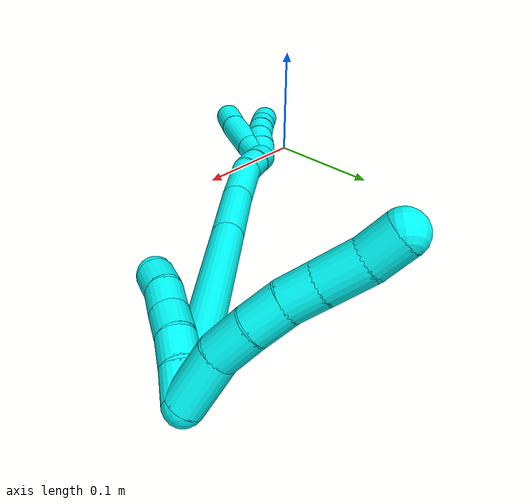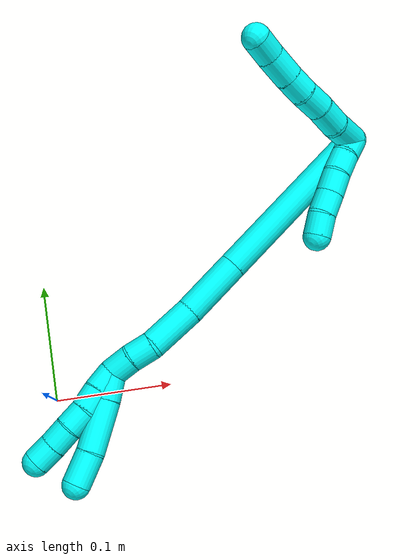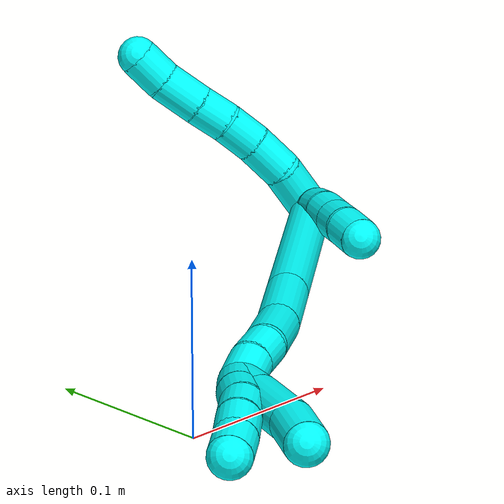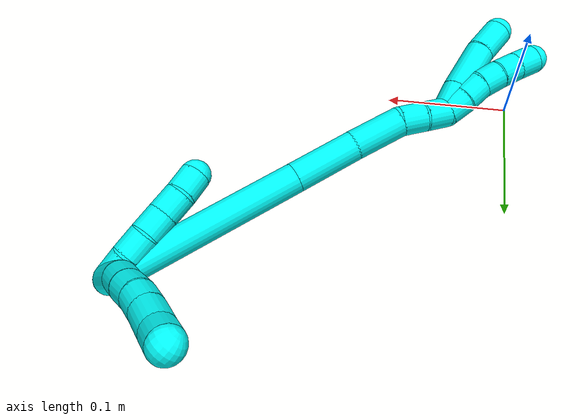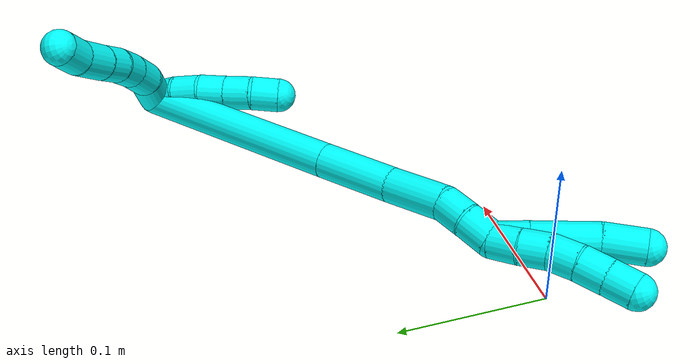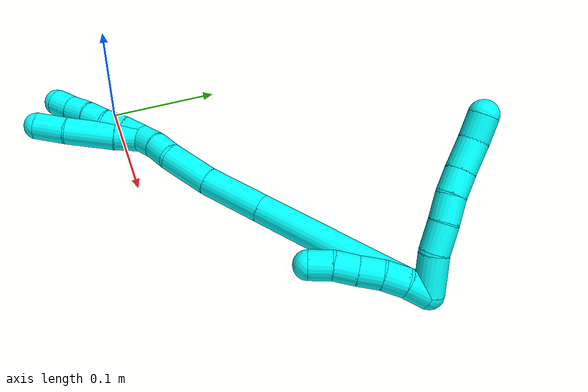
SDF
<sdf version="1.7">
 <world name="default">
  <model name="3">
   <static>0</static>
   <link name="3">
    <collision name="collision-cylinder-e_1_2_8">
     <pose>0.013892 -0.004297 -0.009261 2.70717 0.936992 2.31914</pose>
     <geometry><cylinder><radius>0.0125</radius><length>0.03448</length></cylinder></geometry>
     <surface>
      <friction><ode><mu>1.16</mu><mu2>1.16</mu2><slip1>0</slip1><slip2>0</slip2></ode></friction>
      <contact><ode><kp>1e+06</kp><kd>1</kd><max_vel>0</max_vel><min_depth>0.001</min_depth></ode></contact>
     </surface>
    </collision>
    <visual name="visual-cylinder-e_1_2_8">
     <pose>0.013892 -0.004297 -0.009261 2.70717 0.936992 2.31914</pose>
     <geometry><cylinder><radius>0.0125</radius><length>0.03448</length></cylinder></geometry>
     <material><ambient>0.003922 1 0.996078 1</ambient></material>
    </visual>
    <collision name="collision-cylinder-e_2_8_9">
     <pose>0.038296 -0.013793 -0.022913 2.27213 0.996373 1.72833</pose>
     <geometry><cylinder><radius>0.0125</radius><length>0.025046</length></cylinder></geometry>
     <surface>
      <friction><ode><mu>1.16</mu><mu2>1.16</mu2><slip1>0</slip1><slip2>0</slip2></ode></friction>
      <contact><ode><kp>1e+06</kp><kd>1</kd><max_vel>0</max_vel><min_depth>0.001</min_depth></ode></contact>
     </surface>
    </collision>
    <visual name="visual-cylinder-e_2_8_9">
     <pose>0.038296 -0.013793 -0.022913 2.27213 0.996373 1.72833</pose>
     <geometry><cylinder><radius>0.0125</radius><length>0.025046</length></cylinder></geometry>
     <material><ambient>0.003922 1 0.996078 1</ambient></material>
    </visual>
    <collision name="collision-cylinder-e_3_9_10">
     <pose>0.057461 -0.024548 -0.031321 2.19674 0.900622 1.51534</pose>
     <geometry><cylinder><radius>0.0125</radius><length>0.022077</length></cylinder></geometry>
     <surface>
      <friction><ode><mu>1.16</mu><mu2>1.16</mu2><slip1>0</slip1><slip2>0</slip2></ode></friction>
      <contact><ode><kp>1e+06</kp><kd>1</kd><max_vel>0</max_vel><min_depth>0.001</min_depth></ode></contact>
     </surface>
    </collision>
    <visual name="visual-cylinder-e_3_9_10">
     <pose>0.057461 -0.024548 -0.031321 2.19674 0.900622 1.51534</pose>
     <geometry><cylinder><radius>0.0125</radius><length>0.022077</length></cylinder></geometry>
     <material><ambient>0.003922 1 0.996078 1</ambient></material>
    </visual>
    <collision name="collision-cylinder-e_4_10_11">
     <pose>0.074093 -0.035976 -0.03775 1.96068 0.898869 1.24766</pose>
     <geometry><cylinder><radius>0.0125</radius><length>0.020397</length></cylinder></geometry>
     <surface>
      <friction><ode><mu>1.16</mu><mu2>1.16</mu2><slip1>0</slip1><slip2>0</slip2></ode></friction>
      <contact><ode><kp>1e+06</kp><kd>1</kd><max_vel>0</max_vel><min_depth>0.001</min_depth></ode></contact>
     </surface>
    </collision>
    <visual name="visual-cylinder-e_4_10_11">
     <pose>0.074093 -0.035976 -0.03775 1.96068 0.898869 1.24766</pose>
     <geometry><cylinder><radius>0.0125</radius><length>0.020397</length></cylinder></geometry>
     <material><ambient>0.003922 1 0.996078 1</ambient></material>
    </visual>
    <collision name="collision-cylinder-e_5_11_12">
     <pose>0.0928 -0.049036 -0.042964 1.9423 0.947274 1.2867</pose>
     <geometry><cylinder><radius>0.0125</radius><length>0.026423</length></cylinder></geometry>
     <surface>
      <friction><ode><mu>1.16</mu><mu2>1.16</mu2><slip1>0</slip1><slip2>0</slip2></ode></friction>
      <contact><ode><kp>1e+06</kp><kd>1</kd><max_vel>0</max_vel><min_depth>0.001</min_depth></ode></contact>
     </surface>
    </collision>
    <visual name="visual-cylinder-e_5_11_12">
     <pose>0.0928 -0.049036 -0.042964 1.9423 0.947274 1.2867</pose>
     <geometry><cylinder><radius>0.0125</radius><length>0.026423</length></cylinder></geometry>
     <material><ambient>0.003922 1 0.996078 1</ambient></material>
    </visual>
    <collision name="collision-cylinder-e_6_12_6">
     <pose>0.112863 -0.060592 -0.048947 2.20064 1.0461 1.69605</pose>
     <geometry><cylinder><radius>0.0125</radius><length>0.021577</length></cylinder></geometry>
     <surface>
      <friction><ode><mu>1.16</mu><mu2>1.16</mu2><slip1>0</slip1><slip2>0</slip2></ode></friction>
      <contact><ode><kp>1e+06</kp><kd>1</kd><max_vel>0</max_vel><min_depth>0.001</min_depth></ode></contact>
     </surface>
    </collision>
    <visual name="visual-cylinder-e_6_12_6">
     <pose>0.112863 -0.060592 -0.048947 2.20064 1.0461 1.69605</pose>
     <geometry><cylinder><radius>0.0125</radius><length>0.021577</length></cylinder></geometry>
     <material><ambient>0.003922 1 0.996078 1</ambient></material>
    </visual>
    <collision name="collision-cylinder-e_1_2_13">
     <pose>-0.001248 0.001042 -0.009867 -3.03641 -0.125151 1.74417</pose>
     <geometry><cylinder><radius>0.0125</radius><length>0.02</length></cylinder></geometry>
     <surface>
      <friction><ode><mu>1.16</mu><mu2>1.16</mu2><slip1>0</slip1><slip2>0</slip2></ode></friction>
      <contact><ode><kp>1e+06</kp><kd>1</kd><max_vel>0</max_vel><min_depth>0.001</min_depth></ode></contact>
     </surface>
    </collision>
    <visual name="visual-cylinder-e_1_2_13">
     <pose>-0.001248 0.001042 -0.009867 -3.03641 -0.125151 1.74417</pose>
     <geometry><cylinder><radius>0.0125</radius><length>0.02</length></cylinder></geometry>
     <material><ambient>0.003922 1 0.996078 1</ambient></material>
    </visual>
    <collision name="collision-cylinder-e_2_13_14">
     <pose>-0.005564 0.003057 -0.029202 -3.03912 -0.311756 2.51074</pose>
     <geometry><cylinder><radius>0.0125</radius><length>0.02</length></cylinder></geometry>
     <surface>
      <friction><ode><mu>1.16</mu><mu2>1.16</mu2><slip1>0</slip1><slip2>0</slip2></ode></friction>
      <contact><ode><kp>1e+06</kp><kd>1</kd><max_vel>0</max_vel><min_depth>0.001</min_depth></ode></contact>
     </surface>
    </collision>
    <visual name="visual-cylinder-e_2_13_14">
     <pose>-0.005564 0.003057 -0.029202 -3.03912 -0.311756 2.51074</pose>
     <geometry><cylinder><radius>0.0125</radius><length>0.02</length></cylinder></geometry>
     <material><ambient>0.003922 1 0.996078 1</ambient></material>
    </visual>
    <collision name="collision-cylinder-e_3_14_15">
     <pose>-0.013323 0.00513 -0.047432 -3.01678 -0.488354 2.65012</pose>
     <geometry><cylinder><radius>0.0125</radius><length>0.02</length></cylinder></geometry>
     <surface>
      <friction><ode><mu>1.16</mu><mu2>1.16</mu2><slip1>0</slip1><slip2>0</slip2></ode></friction>
      <contact><ode><kp>1e+06</kp><kd>1</kd><max_vel>0</max_vel><min_depth>0.001</min_depth></ode></contact>
     </surface>
    </collision>
    <visual name="visual-cylinder-e_3_14_15">
     <pose>-0.013323 0.00513 -0.047432 -3.01678 -0.488354 2.65012</pose>
     <geometry><cylinder><radius>0.0125</radius><length>0.02</length></cylinder></geometry>
     <material><ambient>0.003922 1 0.996078 1</ambient></material>
    </visual>
    <collision name="collision-cylinder-e_4_15_16">
     <pose>-0.022259 0.007198 -0.065197 -3.03441 -0.438387 2.66898</pose>
     <geometry><cylinder><radius>0.0125</radius><length>0.02</length></cylinder></geometry>
     <surface>
      <friction><ode><mu>1.16</mu><mu2>1.16</mu2><slip1>0</slip1><slip2>0</slip2></ode></friction>
      <contact><ode><kp>1e+06</kp><kd>1</kd><max_vel>0</max_vel><min_depth>0.001</min_depth></ode></contact>
     </surface>
    </collision>
    <visual name="visual-cylinder-e_4_15_16">
     <pose>-0.022259 0.007198 -0.065197 -3.03441 -0.438387 2.66898</pose>
     <geometry><cylinder><radius>0.0125</radius><length>0.02</length></cylinder></geometry>
     <material><ambient>0.003922 1 0.996078 1</ambient></material>
    </visual>
    <collision name="collision-cylinder-e_5_16_5">
     <pose>-0.032347 0.009929 -0.082121 -2.92267 -0.623999 2.48478</pose>
     <geometry><cylinder><radius>0.0125</radius><length>0.02</length></cylinder></geometry>
     <surface>
      <friction><ode><mu>1.16</mu><mu2>1.16</mu2><slip1>0</slip1><slip2>0</slip2></ode></friction>
      <contact><ode><kp>1e+06</kp><kd>1</kd><max_vel>0</max_vel><min_depth>0.001</min_depth></ode></contact>
     </surface>
    </collision>
    <visual name="visual-cylinder-e_5_16_5">
     <pose>-0.032347 0.009929 -0.082121 -2.92267 -0.623999 2.48478</pose>
     <geometry><cylinder><radius>0.0125</radius><length>0.02</length></cylinder></geometry>
     <material><ambient>0.003922 1 0.996078 1</ambient></material>
    </visual>
    <collision name="collision-cylinder-e_1_2_17">
     <pose>-0.028082 -0.022578 -0.070178 2.83033 -0.363959 -1.72954</pose>
     <geometry><cylinder><radius>0.0125</radius><length>0.157777</length></cylinder></geometry>
     <surface>
      <friction><ode><mu>1.16</mu><mu2>1.16</mu2><slip1>0</slip1><slip2>0</slip2></ode></friction>
      <contact><ode><kp>1e+06</kp><kd>1</kd><max_vel>0</max_vel><min_depth>0.001</min_depth></ode></contact>
     </surface>
    </collision>
    <visual name="visual-cylinder-e_1_2_17">
     <pose>-0.028082 -0.022578 -0.070178 2.83033 -0.363959 -1.72954</pose>
     <geometry><cylinder><radius>0.0125</radius><length>0.157777</length></cylinder></geometry>
     <material><ambient>0.003922 1 0.996078 1</ambient></material>
    </visual>
    <collision name="collision-cylinder-e_2_17_18">
     <pose>-0.065913 -0.053006 -0.165092 2.83426 -0.359321 -1.72934</pose>
     <geometry><cylinder><radius>0.0125</radius><length>0.055444</length></cylinder></geometry>
     <surface>
      <friction><ode><mu>1.16</mu><mu2>1.16</mu2><slip1>0</slip1><slip2>0</slip2></ode></friction>
      <contact><ode><kp>1e+06</kp><kd>1</kd><max_vel>0</max_vel><min_depth>0.001</min_depth></ode></contact>
     </surface>
    </collision>
    <visual name="visual-cylinder-e_2_17_18">
     <pose>-0.065913 -0.053006 -0.165092 2.83426 -0.359321 -1.72934</pose>
     <geometry><cylinder><radius>0.0125</radius><length>0.055444</length></cylinder></geometry>
     <material><ambient>0.003922 1 0.996078 1</ambient></material>
    </visual>
    <collision name="collision-cylinder-e_3_18_19">
     <pose>-0.081378 -0.067702 -0.209899 2.81291 -0.263311 -1.34765</pose>
     <geometry><cylinder><radius>0.0125</radius><length>0.043926</length></cylinder></geometry>
     <surface>
      <friction><ode><mu>1.16</mu><mu2>1.16</mu2><slip1>0</slip1><slip2>0</slip2></ode></friction>
      <contact><ode><kp>1e+06</kp><kd>1</kd><max_vel>0</max_vel><min_depth>0.001</min_depth></ode></contact>
     </surface>
    </collision>
    <visual name="visual-cylinder-e_3_18_19">
     <pose>-0.081378 -0.067702 -0.209899 2.81291 -0.263311 -1.34765</pose>
     <geometry><cylinder><radius>0.0125</radius><length>0.043926</length></cylinder></geometry>
     <material><ambient>0.003922 1 0.996078 1</ambient></material>
    </visual>
    <collision name="collision-cylinder-e_4_19_20">
     <pose>-0.090427 -0.080369 -0.238182 2.52497 -0.319751 -0.937411</pose>
     <geometry><cylinder><radius>0.0125</radius><length>0.021207</length></cylinder></geometry>
     <surface>
      <friction><ode><mu>1.16</mu><mu2>1.16</mu2><slip1>0</slip1><slip2>0</slip2></ode></friction>
      <contact><ode><kp>1e+06</kp><kd>1</kd><max_vel>0</max_vel><min_depth>0.001</min_depth></ode></contact>
     </surface>
    </collision>
    <visual name="visual-cylinder-e_4_19_20">
     <pose>-0.090427 -0.080369 -0.238182 2.52497 -0.319751 -0.937411</pose>
     <geometry><cylinder><radius>0.0125</radius><length>0.021207</length></cylinder></geometry>
     <material><ambient>0.003922 1 0.996078 1</ambient></material>
    </visual>
    <collision name="collision-cylinder-e_5_20_1">
     <pose>-0.098722 -0.091702 -0.254276 2.53126 -0.476298 -1.31316</pose>
     <geometry><cylinder><radius>0.0125</radius><length>0.021646</length></cylinder></geometry>
     <surface>
      <friction><ode><mu>1.16</mu><mu2>1.16</mu2><slip1>0</slip1><slip2>0</slip2></ode></friction>
      <contact><ode><kp>1e+06</kp><kd>1</kd><max_vel>0</max_vel><min_depth>0.001</min_depth></ode></contact>
     </surface>
    </collision>
    <visual name="visual-cylinder-e_5_20_1">
     <pose>-0.098722 -0.091702 -0.254276 2.53126 -0.476298 -1.31316</pose>
     <geometry><cylinder><radius>0.0125</radius><length>0.021646</length></cylinder></geometry>
     <material><ambient>0.003922 1 0.996078 1</ambient></material>
    </visual>
    <collision name="collision-cylinder-e_1_1_21">
     <pose>-0.106811 -0.098943 -0.271498 2.95864 -0.318008 -2.10234</pose>
     <geometry><cylinder><radius>0.0125</radius><length>0.02</length></cylinder></geometry>
     <surface>
      <friction><ode><mu>1.16</mu><mu2>1.16</mu2><slip1>0</slip1><slip2>0</slip2></ode></friction>
      <contact><ode><kp>1e+06</kp><kd>1</kd><max_vel>0</max_vel><min_depth>0.001</min_depth></ode></contact>
     </surface>
    </collision>
    <visual name="visual-cylinder-e_1_1_21">
     <pose>-0.106811 -0.098943 -0.271498 2.95864 -0.318008 -2.10234</pose>
     <geometry><cylinder><radius>0.0125</radius><length>0.02</length></cylinder></geometry>
     <material><ambient>0.003922 1 0.996078 1</ambient></material>
    </visual>
    <collision name="collision-cylinder-e_2_21_22">
     <pose>-0.113639 -0.101455 -0.290095 3.05713 -0.379148 -2.70805</pose>
     <geometry><cylinder><radius>0.0125</radius><length>0.02</length></cylinder></geometry>
     <surface>
      <friction><ode><mu>1.16</mu><mu2>1.16</mu2><slip1>0</slip1><slip2>0</slip2></ode></friction>
      <contact><ode><kp>1e+06</kp><kd>1</kd><max_vel>0</max_vel><min_depth>0.001</min_depth></ode></contact>
     </surface>
    </collision>
    <visual name="visual-cylinder-e_2_21_22">
     <pose>-0.113639 -0.101455 -0.290095 3.05713 -0.379148 -2.70805</pose>
     <geometry><cylinder><radius>0.0125</radius><length>0.02</length></cylinder></geometry>
     <material><ambient>0.003922 1 0.996078 1</ambient></material>
    </visual>
    <collision name="collision-cylinder-e_3_22_23">
     <pose>-0.121196 -0.105044 -0.308141 2.83262 -0.395783 -1.82094</pose>
     <geometry><cylinder><radius>0.0125</radius><length>0.02</length></cylinder></geometry>
     <surface>
      <friction><ode><mu>1.16</mu><mu2>1.16</mu2><slip1>0</slip1><slip2>0</slip2></ode></friction>
      <contact><ode><kp>1e+06</kp><kd>1</kd><max_vel>0</max_vel><min_depth>0.001</min_depth></ode></contact>
     </surface>
    </collision>
    <visual name="visual-cylinder-e_3_22_23">
     <pose>-0.121196 -0.105044 -0.308141 2.83262 -0.395783 -1.82094</pose>
     <geometry><cylinder><radius>0.0125</radius><length>0.02</length></cylinder></geometry>
     <material><ambient>0.003922 1 0.996078 1</ambient></material>
    </visual>
    <collision name="collision-cylinder-e_4_23_24">
     <pose>-0.12989 -0.111005 -0.325094 2.77275 -0.505088 -1.88977</pose>
     <geometry><cylinder><radius>0.0125</radius><length>0.02</length></cylinder></geometry>
     <surface>
      <friction><ode><mu>1.16</mu><mu2>1.16</mu2><slip1>0</slip1><slip2>0</slip2></ode></friction>
      <contact><ode><kp>1e+06</kp><kd>1</kd><max_vel>0</max_vel><min_depth>0.001</min_depth></ode></contact>
     </surface>
    </collision>
    <visual name="visual-cylinder-e_4_23_24">
     <pose>-0.12989 -0.111005 -0.325094 2.77275 -0.505088 -1.88977</pose>
     <geometry><cylinder><radius>0.0125</radius><length>0.02</length></cylinder></geometry>
     <material><ambient>0.003922 1 0.996078 1</ambient></material>
    </visual>
    <collision name="collision-cylinder-e_5_24_4">
     <pose>-0.139042 -0.117687 -0.341561 2.73999 -0.445952 -1.67855</pose>
     <geometry><cylinder><radius>0.0125</radius><length>0.02</length></cylinder></geometry>
     <surface>
      <friction><ode><mu>1.16</mu><mu2>1.16</mu2><slip1>0</slip1><slip2>0</slip2></ode></friction>
      <contact><ode><kp>1e+06</kp><kd>1</kd><max_vel>0</max_vel><min_depth>0.001</min_depth></ode></contact>
     </surface>
    </collision>
    <visual name="visual-cylinder-e_5_24_4">
     <pose>-0.139042 -0.117687 -0.341561 2.73999 -0.445952 -1.67855</pose>
     <geometry><cylinder><radius>0.0125</radius><length>0.02</length></cylinder></geometry>
     <material><ambient>0.003922 1 0.996078 1</ambient></material>
    </visual>
    <collision name="collision-cylinder-e_1_1_25">
     <pose>-0.109859 -0.09426 -0.27224 -2.85652 -0.531325 2.17089</pose>
     <geometry><cylinder><radius>0.0125</radius><length>0.024372</length></cylinder></geometry>
     <surface>
      <friction><ode><mu>1.16</mu><mu2>1.16</mu2><slip1>0</slip1><slip2>0</slip2></ode></friction>
      <contact><ode><kp>1e+06</kp><kd>1</kd><max_vel>0</max_vel><min_depth>0.001</min_depth></ode></contact>
     </surface>
    </collision>
    <visual name="visual-cylinder-e_1_1_25">
     <pose>-0.109859 -0.09426 -0.27224 -2.85652 -0.531325 2.17089</pose>
     <geometry><cylinder><radius>0.0125</radius><length>0.024372</length></cylinder></geometry>
     <material><ambient>0.003922 1 0.996078 1</ambient></material>
    </visual>
    <collision name="collision-cylinder-e_2_25_26">
     <pose>-0.126939 -0.087288 -0.302247 -2.94264 -0.492441 2.38554</pose>
     <geometry><cylinder><radius>0.0125</radius><length>0.046134</length></cylinder></geometry>
     <surface>
      <friction><ode><mu>1.16</mu><mu2>1.16</mu2><slip1>0</slip1><slip2>0</slip2></ode></friction>
      <contact><ode><kp>1e+06</kp><kd>1</kd><max_vel>0</max_vel><min_depth>0.001</min_depth></ode></contact>
     </surface>
    </collision>
    <visual name="visual-cylinder-e_2_25_26">
     <pose>-0.126939 -0.087288 -0.302247 -2.94264 -0.492441 2.38554</pose>
     <geometry><cylinder><radius>0.0125</radius><length>0.046134</length></cylinder></geometry>
     <material><ambient>0.003922 1 0.996078 1</ambient></material>
    </visual>
    <collision name="collision-cylinder-e_3_26_3">
     <pose>-0.145201 -0.082818 -0.334946 -3.10612 -0.522238 3.00903</pose>
     <geometry><cylinder><radius>0.0125</radius><length>0.029494</length></cylinder></geometry>
     <surface>
      <friction><ode><mu>1.16</mu><mu2>1.16</mu2><slip1>0</slip1><slip2>0</slip2></ode></friction>
      <contact><ode><kp>1e+06</kp><kd>1</kd><max_vel>0</max_vel><min_depth>0.001</min_depth></ode></contact>
     </surface>
    </collision>
    <visual name="visual-cylinder-e_3_26_3">
     <pose>-0.145201 -0.082818 -0.334946 -3.10612 -0.522238 3.00903</pose>
     <geometry><cylinder><radius>0.0125</radius><length>0.029494</length></cylinder></geometry>
     <material><ambient>0.003922 1 0.996078 1</ambient></material>
    </visual>
    <collision name="collision-sphere-3">
     <pose>-0.152557 -0.082365 -0.347719 0 -0 0</pose>
     <geometry><sphere><radius>0.0125</radius></sphere></geometry>
     <surface>
      <friction><ode><mu>1.16</mu><mu2>1.16</mu2><slip1>0</slip1><slip2>0</slip2></ode></friction>
      <contact><ode><kp>1e+06</kp><kd>1</kd><max_vel>0</max_vel><min_depth>0.001</min_depth></ode></contact>
     </surface>
    </collision>
    <visual name="visual-sphere-3">
     <pose>-0.152557 -0.082365 -0.347719 0 -0 0</pose>
     <geometry><sphere><radius>0.0125</radius></sphere></geometry>
     <material><ambient>0.003922 1 0.996078 1</ambient></material>
    </visual>
    <collision name="collision-sphere-26">
     <pose>-0.137845 -0.083271 -0.322172 0 -0 0</pose>
     <geometry><sphere><radius>0.0125</radius></sphere></geometry>
     <surface>
      <friction><ode><mu>1.16</mu><mu2>1.16</mu2><slip1>0</slip1><slip2>0</slip2></ode></friction>
      <contact><ode><kp>1e+06</kp><kd>1</kd><max_vel>0</max_vel><min_depth>0.001</min_depth></ode></contact>
     </surface>
    </collision>
    <visual name="visual-sphere-26">
     <pose>-0.137845 -0.083271 -0.322172 0 -0 0</pose>
     <geometry><sphere><radius>0.0125</radius></sphere></geometry>
     <material><ambient>0.003922 1 0.996078 1</ambient></material>
    </visual>
    <collision name="collision-sphere-25">
     <pose>-0.116033 -0.091306 -0.282321 0 -0 0</pose>
     <geometry><sphere><radius>0.0125</radius></sphere></geometry>
     <surface>
      <friction><ode><mu>1.16</mu><mu2>1.16</mu2><slip1>0</slip1><slip2>0</slip2></ode></friction>
      <contact><ode><kp>1e+06</kp><kd>1</kd><max_vel>0</max_vel><min_depth>0.001</min_depth></ode></contact>
     </surface>
    </collision>
    <visual name="visual-sphere-25">
     <pose>-0.116033 -0.091306 -0.282321 0 -0 0</pose>
     <geometry><sphere><radius>0.0125</radius></sphere></geometry>
     <material><ambient>0.003922 1 0.996078 1</ambient></material>
    </visual>
    <collision name="collision-sphere-4">
     <pose>-0.143355 -0.121214 -0.349865 0 -0 0</pose>
     <geometry><sphere><radius>0.0125</radius></sphere></geometry>
     <surface>
      <friction><ode><mu>1.16</mu><mu2>1.16</mu2><slip1>0</slip1><slip2>0</slip2></ode></friction>
      <contact><ode><kp>1e+06</kp><kd>1</kd><max_vel>0</max_vel><min_depth>0.001</min_depth></ode></contact>
     </surface>
    </collision>
    <visual name="visual-sphere-4">
     <pose>-0.143355 -0.121214 -0.349865 0 -0 0</pose>
     <geometry><sphere><radius>0.0125</radius></sphere></geometry>
     <material><ambient>0.003922 1 0.996078 1</ambient></material>
    </visual>
    <collision name="collision-sphere-24">
     <pose>-0.134729 -0.11416 -0.333257 0 -0 0</pose>
     <geometry><sphere><radius>0.0125</radius></sphere></geometry>
     <surface>
      <friction><ode><mu>1.16</mu><mu2>1.16</mu2><slip1>0</slip1><slip2>0</slip2></ode></friction>
      <contact><ode><kp>1e+06</kp><kd>1</kd><max_vel>0</max_vel><min_depth>0.001</min_depth></ode></contact>
     </surface>
    </collision>
    <visual name="visual-sphere-24">
     <pose>-0.134729 -0.11416 -0.333257 0 -0 0</pose>
     <geometry><sphere><radius>0.0125</radius></sphere></geometry>
     <material><ambient>0.003922 1 0.996078 1</ambient></material>
    </visual>
    <collision name="collision-sphere-23">
     <pose>-0.125051 -0.10785 -0.316931 0 -0 0</pose>
     <geometry><sphere><radius>0.0125</radius></sphere></geometry>
     <surface>
      <friction><ode><mu>1.16</mu><mu2>1.16</mu2><slip1>0</slip1><slip2>0</slip2></ode></friction>
      <contact><ode><kp>1e+06</kp><kd>1</kd><max_vel>0</max_vel><min_depth>0.001</min_depth></ode></contact>
     </surface>
    </collision>
    <visual name="visual-sphere-23">
     <pose>-0.125051 -0.10785 -0.316931 0 -0 0</pose>
     <geometry><sphere><radius>0.0125</radius></sphere></geometry>
     <material><ambient>0.003922 1 0.996078 1</ambient></material>
    </visual>
    <collision name="collision-sphere-22">
     <pose>-0.117341 -0.102239 -0.299351 0 -0 0</pose>
     <geometry><sphere><radius>0.0125</radius></sphere></geometry>
     <surface>
      <friction><ode><mu>1.16</mu><mu2>1.16</mu2><slip1>0</slip1><slip2>0</slip2></ode></friction>
      <contact><ode><kp>1e+06</kp><kd>1</kd><max_vel>0</max_vel><min_depth>0.001</min_depth></ode></contact>
     </surface>
    </collision>
    <visual name="visual-sphere-22">
     <pose>-0.117341 -0.102239 -0.299351 0 -0 0</pose>
     <geometry><sphere><radius>0.0125</radius></sphere></geometry>
     <material><ambient>0.003922 1 0.996078 1</ambient></material>
    </visual>
    <collision name="collision-sphere-21">
     <pose>-0.109938 -0.100671 -0.280838 0 -0 0</pose>
     <geometry><sphere><radius>0.0125</radius></sphere></geometry>
     <surface>
      <friction><ode><mu>1.16</mu><mu2>1.16</mu2><slip1>0</slip1><slip2>0</slip2></ode></friction>
      <contact><ode><kp>1e+06</kp><kd>1</kd><max_vel>0</max_vel><min_depth>0.001</min_depth></ode></contact>
     </surface>
    </collision>
    <visual name="visual-sphere-21">
     <pose>-0.109938 -0.100671 -0.280838 0 -0 0</pose>
     <geometry><sphere><radius>0.0125</radius></sphere></geometry>
     <material><ambient>0.003922 1 0.996078 1</ambient></material>
    </visual>
    <collision name="collision-sphere-1">
     <pose>-0.103685 -0.097215 -0.262158 0 -0 0</pose>
     <geometry><sphere><radius>0.0125</radius></sphere></geometry>
     <surface>
      <friction><ode><mu>1.16</mu><mu2>1.16</mu2><slip1>0</slip1><slip2>0</slip2></ode></friction>
      <contact><ode><kp>1e+06</kp><kd>1</kd><max_vel>0</max_vel><min_depth>0.001</min_depth></ode></contact>
     </surface>
    </collision>
    <visual name="visual-sphere-1">
     <pose>-0.103685 -0.097215 -0.262158 0 -0 0</pose>
     <geometry><sphere><radius>0.0125</radius></sphere></geometry>
     <material><ambient>0.003922 1 0.996078 1</ambient></material>
    </visual>
    <collision name="collision-sphere-12">
     <pose>0.103526 -0.056224 -0.045764 0 -0 0</pose>
     <geometry><sphere><radius>0.0125</radius></sphere></geometry>
     <surface>
      <friction><ode><mu>1.16</mu><mu2>1.16</mu2><slip1>0</slip1><slip2>0</slip2></ode></friction>
      <contact><ode><kp>1e+06</kp><kd>1</kd><max_vel>0</max_vel><min_depth>0.001</min_depth></ode></contact>
     </surface>
    </collision>
    <visual name="visual-sphere-12">
     <pose>0.103526 -0.056224 -0.045764 0 -0 0</pose>
     <geometry><sphere><radius>0.0125</radius></sphere></geometry>
     <material><ambient>0.003922 1 0.996078 1</ambient></material>
    </visual>
    <collision name="collision-sphere-11">
     <pose>0.082075 -0.041848 -0.040163 0 -0 0</pose>
     <geometry><sphere><radius>0.0125</radius></sphere></geometry>
     <surface>
      <friction><ode><mu>1.16</mu><mu2>1.16</mu2><slip1>0</slip1><slip2>0</slip2></ode></friction>
      <contact><ode><kp>1e+06</kp><kd>1</kd><max_vel>0</max_vel><min_depth>0.001</min_depth></ode></contact>
     </surface>
    </collision>
    <visual name="visual-sphere-11">
     <pose>0.082075 -0.041848 -0.040163 0 -0 0</pose>
     <geometry><sphere><radius>0.0125</radius></sphere></geometry>
     <material><ambient>0.003922 1 0.996078 1</ambient></material>
    </visual>
    <collision name="collision-sphere-10">
     <pose>0.066112 -0.030104 -0.035337 0 -0 0</pose>
     <geometry><sphere><radius>0.0125</radius></sphere></geometry>
     <surface>
      <friction><ode><mu>1.16</mu><mu2>1.16</mu2><slip1>0</slip1><slip2>0</slip2></ode></friction>
      <contact><ode><kp>1e+06</kp><kd>1</kd><max_vel>0</max_vel><min_depth>0.001</min_depth></ode></contact>
     </surface>
    </collision>
    <visual name="visual-sphere-10">
     <pose>0.066112 -0.030104 -0.035337 0 -0 0</pose>
     <geometry><sphere><radius>0.0125</radius></sphere></geometry>
     <material><ambient>0.003922 1 0.996078 1</ambient></material>
    </visual>
    <collision name="collision-sphere-9">
     <pose>0.04881 -0.018991 -0.027304 0 -0 0</pose>
     <geometry><sphere><radius>0.0125</radius></sphere></geometry>
     <surface>
      <friction><ode><mu>1.16</mu><mu2>1.16</mu2><slip1>0</slip1><slip2>0</slip2></ode></friction>
      <contact><ode><kp>1e+06</kp><kd>1</kd><max_vel>0</max_vel><min_depth>0.001</min_depth></ode></contact>
     </surface>
    </collision>
    <visual name="visual-sphere-9">
     <pose>0.04881 -0.018991 -0.027304 0 -0 0</pose>
     <geometry><sphere><radius>0.0125</radius></sphere></geometry>
     <material><ambient>0.003922 1 0.996078 1</ambient></material>
    </visual>
    <collision name="collision-sphere-2">
     <geometry><sphere><radius>0.0125</radius></sphere></geometry>
     <surface>
      <friction><ode><mu>1.16</mu><mu2>1.16</mu2><slip1>0</slip1><slip2>0</slip2></ode></friction>
      <contact><ode><kp>1e+06</kp><kd>1</kd><max_vel>0</max_vel><min_depth>0.001</min_depth></ode></contact>
     </surface>
    </collision>
    <visual name="visual-sphere-2">
     <geometry><sphere><radius>0.0125</radius></sphere></geometry>
     <material><ambient>0.003922 1 0.996078 1</ambient></material>
    </visual>
    <collision name="collision-sphere-19">
     <pose>-0.087094 -0.074547 -0.22997 0 -0 0</pose>
     <geometry><sphere><radius>0.0125</radius></sphere></geometry>
     <surface>
      <friction><ode><mu>1.16</mu><mu2>1.16</mu2><slip1>0</slip1><slip2>0</slip2></ode></friction>
      <contact><ode><kp>1e+06</kp><kd>1</kd><max_vel>0</max_vel><min_depth>0.001</min_depth></ode></contact>
     </surface>
    </collision>
    <visual name="visual-sphere-19">
     <pose>-0.087094 -0.074547 -0.22997 0 -0 0</pose>
     <geometry><sphere><radius>0.0125</radius></sphere></geometry>
     <material><ambient>0.003922 1 0.996078 1</ambient></material>
    </visual>
    <collision name="collision-sphere-8">
     <pose>0.027783 -0.008594 -0.018523 0 -0 0</pose>
     <geometry><sphere><radius>0.0125</radius></sphere></geometry>
     <surface>
      <friction><ode><mu>1.16</mu><mu2>1.16</mu2><slip1>0</slip1><slip2>0</slip2></ode></friction>
      <contact><ode><kp>1e+06</kp><kd>1</kd><max_vel>0</max_vel><min_depth>0.001</min_depth></ode></contact>
     </surface>
    </collision>
    <visual name="visual-sphere-8">
     <pose>0.027783 -0.008594 -0.018523 0 -0 0</pose>
     <geometry><sphere><radius>0.0125</radius></sphere></geometry>
     <material><ambient>0.003922 1 0.996078 1</ambient></material>
    </visual>
    <collision name="collision-sphere-6">
     <pose>0.1222 -0.064959 -0.052131 0 -0 0</pose>
     <geometry><sphere><radius>0.0125</radius></sphere></geometry>
     <surface>
      <friction><ode><mu>1.16</mu><mu2>1.16</mu2><slip1>0</slip1><slip2>0</slip2></ode></friction>
      <contact><ode><kp>1e+06</kp><kd>1</kd><max_vel>0</max_vel><min_depth>0.001</min_depth></ode></contact>
     </surface>
    </collision>
    <visual name="visual-sphere-6">
     <pose>0.1222 -0.064959 -0.052131 0 -0 0</pose>
     <geometry><sphere><radius>0.0125</radius></sphere></geometry>
     <material><ambient>0.003922 1 0.996078 1</ambient></material>
    </visual>
    <collision name="collision-sphere-13">
     <pose>-0.002496 0.002083 -0.019734 0 -0 0</pose>
     <geometry><sphere><radius>0.0125</radius></sphere></geometry>
     <surface>
      <friction><ode><mu>1.16</mu><mu2>1.16</mu2><slip1>0</slip1><slip2>0</slip2></ode></friction>
      <contact><ode><kp>1e+06</kp><kd>1</kd><max_vel>0</max_vel><min_depth>0.001</min_depth></ode></contact>
     </surface>
    </collision>
    <visual name="visual-sphere-13">
     <pose>-0.002496 0.002083 -0.019734 0 -0 0</pose>
     <geometry><sphere><radius>0.0125</radius></sphere></geometry>
     <material><ambient>0.003922 1 0.996078 1</ambient></material>
    </visual>
    <collision name="collision-sphere-14">
     <pose>-0.008631 0.004031 -0.03867 0 -0 0</pose>
     <geometry><sphere><radius>0.0125</radius></sphere></geometry>
     <surface>
      <friction><ode><mu>1.16</mu><mu2>1.16</mu2><slip1>0</slip1><slip2>0</slip2></ode></friction>
      <contact><ode><kp>1e+06</kp><kd>1</kd><max_vel>0</max_vel><min_depth>0.001</min_depth></ode></contact>
     </surface>
    </collision>
    <visual name="visual-sphere-14">
     <pose>-0.008631 0.004031 -0.03867 0 -0 0</pose>
     <geometry><sphere><radius>0.0125</radius></sphere></geometry>
     <material><ambient>0.003922 1 0.996078 1</ambient></material>
    </visual>
    <collision name="collision-sphere-15">
     <pose>-0.018015 0.006229 -0.056195 0 -0 0</pose>
     <geometry><sphere><radius>0.0125</radius></sphere></geometry>
     <surface>
      <friction><ode><mu>1.16</mu><mu2>1.16</mu2><slip1>0</slip1><slip2>0</slip2></ode></friction>
      <contact><ode><kp>1e+06</kp><kd>1</kd><max_vel>0</max_vel><min_depth>0.001</min_depth></ode></contact>
     </surface>
    </collision>
    <visual name="visual-sphere-15">
     <pose>-0.018015 0.006229 -0.056195 0 -0 0</pose>
     <geometry><sphere><radius>0.0125</radius></sphere></geometry>
     <material><ambient>0.003922 1 0.996078 1</ambient></material>
    </visual>
    <collision name="collision-sphere-16">
     <pose>-0.026504 0.008167 -0.0742 0 -0 0</pose>
     <geometry><sphere><radius>0.0125</radius></sphere></geometry>
     <surface>
      <friction><ode><mu>1.16</mu><mu2>1.16</mu2><slip1>0</slip1><slip2>0</slip2></ode></friction>
      <contact><ode><kp>1e+06</kp><kd>1</kd><max_vel>0</max_vel><min_depth>0.001</min_depth></ode></contact>
     </surface>
    </collision>
    <visual name="visual-sphere-16">
     <pose>-0.026504 0.008167 -0.0742 0 -0 0</pose>
     <geometry><sphere><radius>0.0125</radius></sphere></geometry>
     <material><ambient>0.003922 1 0.996078 1</ambient></material>
    </visual>
    <collision name="collision-sphere-5">
     <pose>-0.03819 0.011692 -0.090043 0 -0 0</pose>
     <geometry><sphere><radius>0.0125</radius></sphere></geometry>
     <surface>
      <friction><ode><mu>1.16</mu><mu2>1.16</mu2><slip1>0</slip1><slip2>0</slip2></ode></friction>
      <contact><ode><kp>1e+06</kp><kd>1</kd><max_vel>0</max_vel><min_depth>0.001</min_depth></ode></contact>
     </surface>
    </collision>
    <visual name="visual-sphere-5">
     <pose>-0.03819 0.011692 -0.090043 0 -0 0</pose>
     <geometry><sphere><radius>0.0125</radius></sphere></geometry>
     <material><ambient>0.003922 1 0.996078 1</ambient></material>
    </visual>
    <collision name="collision-sphere-17">
     <pose>-0.056165 -0.045155 -0.140357 0 -0 0</pose>
     <geometry><sphere><radius>0.0125</radius></sphere></geometry>
     <surface>
      <friction><ode><mu>1.16</mu><mu2>1.16</mu2><slip1>0</slip1><slip2>0</slip2></ode></friction>
      <contact><ode><kp>1e+06</kp><kd>1</kd><max_vel>0</max_vel><min_depth>0.001</min_depth></ode></contact>
     </surface>
    </collision>
    <visual name="visual-sphere-17">
     <pose>-0.056165 -0.045155 -0.140357 0 -0 0</pose>
     <geometry><sphere><radius>0.0125</radius></sphere></geometry>
     <material><ambient>0.003922 1 0.996078 1</ambient></material>
    </visual>
    <collision name="collision-sphere-18">
     <pose>-0.075661 -0.060857 -0.189828 0 -0 0</pose>
     <geometry><sphere><radius>0.0125</radius></sphere></geometry>
     <surface>
      <friction><ode><mu>1.16</mu><mu2>1.16</mu2><slip1>0</slip1><slip2>0</slip2></ode></friction>
      <contact><ode><kp>1e+06</kp><kd>1</kd><max_vel>0</max_vel><min_depth>0.001</min_depth></ode></contact>
     </surface>
    </collision>
    <visual name="visual-sphere-18">
     <pose>-0.075661 -0.060857 -0.189828 0 -0 0</pose>
     <geometry><sphere><radius>0.0125</radius></sphere></geometry>
     <material><ambient>0.003922 1 0.996078 1</ambient></material>
    </visual>
    <collision name="collision-sphere-20">
     <pose>-0.09376 -0.08619 -0.246394 0 -0 0</pose>
     <geometry><sphere><radius>0.0125</radius></sphere></geometry>
     <surface>
      <friction><ode><mu>1.16</mu><mu2>1.16</mu2><slip1>0</slip1><slip2>0</slip2></ode></friction>
      <contact><ode><kp>1e+06</kp><kd>1</kd><max_vel>0</max_vel><min_depth>0.001</min_depth></ode></contact>
     </surface>
    </collision>
    <visual name="visual-sphere-20">
     <pose>-0.09376 -0.08619 -0.246394 0 -0 0</pose>
     <geometry><sphere><radius>0.0125</radius></sphere></geometry>
     <material><ambient>0.003922 1 0.996078 1</ambient></material>
    </visual>
    <inertial>
     <pose>-0.044176 -0.048612 -0.147212 0 -0 0</pose>
     <mass>0.75</mass>
     <inertia>
      <ixx>-0.000396</ixx>
      <ixy>0</ixy>
      <ixz>0</ixz>
      <iyy>-0.000211</iyy>
      <iyz>0</iyz>
      <izz>0.000193</izz>
     </inertia>
    </inertial>
   </link>
   <pose>0.291612 0.192023 0.011496 2.49802 -0.965458 1.54012</pose>
  </model>
 </world>
</sdf>
